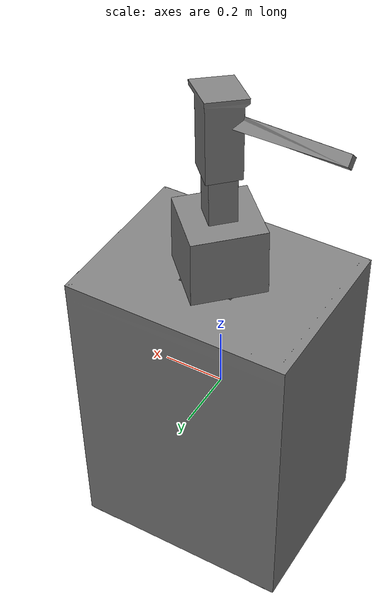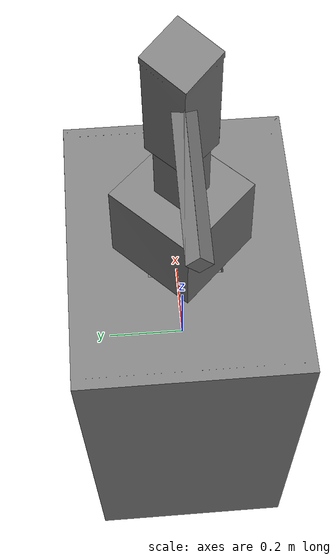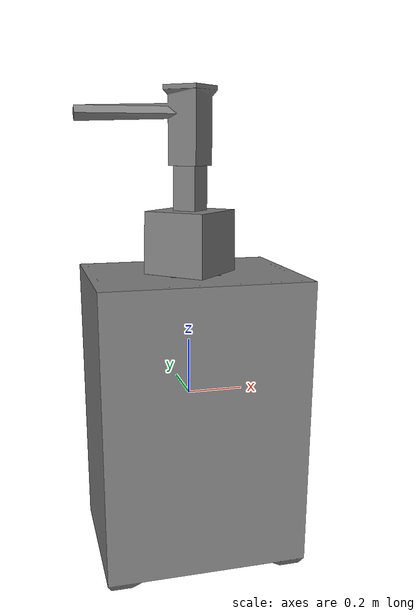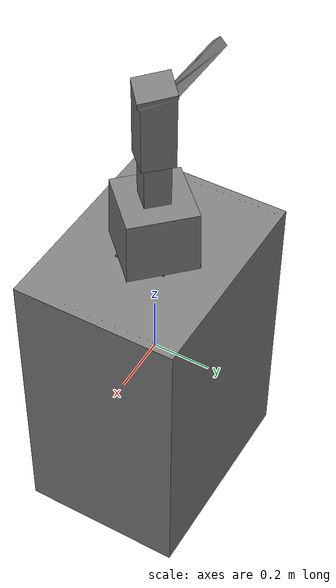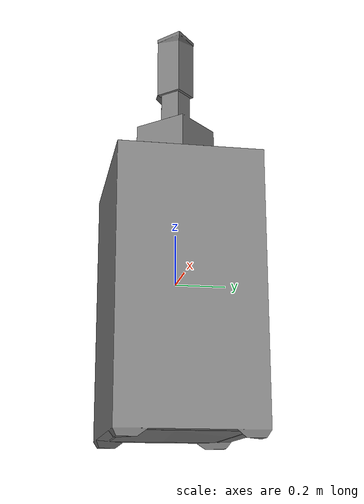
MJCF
<?xml version='1.0' encoding='UTF-8'?>
<mujoco model="partnet_8dc910d2-5ddc-46a7-9216-695dd51cd55b">
  <compiler angle="radian"/>
  <asset>
    <mesh name="original_3" content_type="model/obj" file="textured_objs/original_3.obj"/>
    <mesh name="original_9" content_type="model/obj" file="textured_objs/original_9.obj"/>
    <mesh name="original_4" content_type="model/obj" file="textured_objs/original_4.obj"/>
    <mesh name="original_2" content_type="model/obj" file="textured_objs/original_2.obj"/>
    <mesh name="original_8" content_type="model/obj" file="textured_objs/original_8.obj"/>
    <mesh name="original_5" content_type="model/obj" file="textured_objs/original_5.obj"/>
    <mesh name="original_6" content_type="model/obj" file="textured_objs/original_6.obj"/>
    <mesh name="original_7" content_type="model/obj" file="textured_objs/original_7.obj"/>
    <mesh name="original_1" content_type="model/obj" file="textured_objs/original_1.obj"/>
  </asset>
  <worldbody>
    <body name="base">
      <body name="link_2" quat="0.5 0.5 -0.5 -0.5">
        <geom type="mesh" mesh="original_8"/>
        <geom type="mesh" mesh="original_5"/>
        <geom type="mesh" mesh="original_6"/>
        <geom type="mesh" mesh="original_7"/>
        <geom type="mesh" mesh="original_1"/>
        <body name="link_1_helper">
          <inertial pos="0 0 0" mass="1e-06" diaginertia="1e-10 1e-10 1e-10"/>
          <joint name="joint_4" pos="0 0 0" axis="0 1 0" type="slide" range="0 0.116"/>
          <body name="link_1">
            <joint name="joint_1" pos="0 0 0" axis="0 1 0"/>
            <geom type="mesh" mesh="original_4"/>
            <geom type="mesh" mesh="original_2"/>
            <body name="link_0_helper" pos="-0.00011 0 -0.0052025">
              <inertial pos="0 0 0" mass="1e-06" diaginertia="1e-10 1e-10 1e-10"/>
              <joint name="joint_3" pos="0 0 0" axis="0 -1 0" type="slide" range="0 0.14"/>
              <body name="link_0">
                <joint name="joint_0" pos="0 0 0" axis="0 1 0"/>
                <geom pos="0.00011 0 0.0052025" quat="1 0 0 0" type="mesh" mesh="original_3"/>
                <geom pos="0.00011 0 0.0052025" quat="1 0 0 0" type="mesh" mesh="original_9"/>
              </body>
            </body>
          </body>
        </body>
      </body>
    </body>
  </worldbody>
</mujoco>
